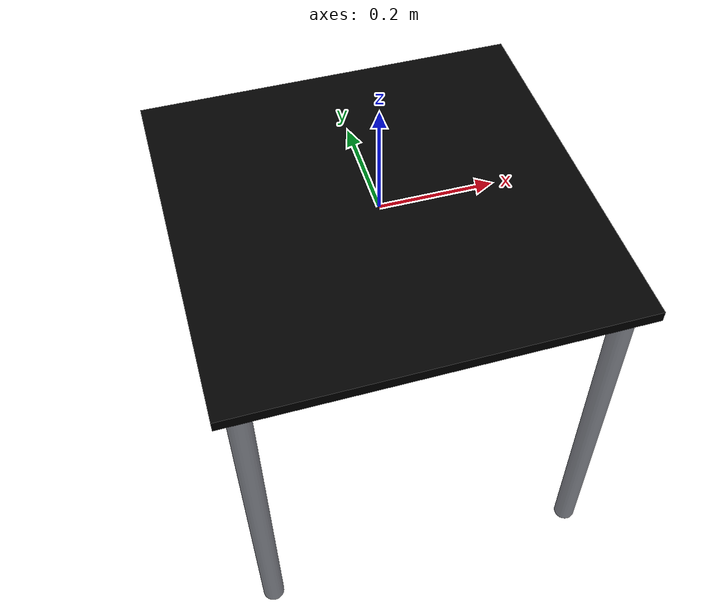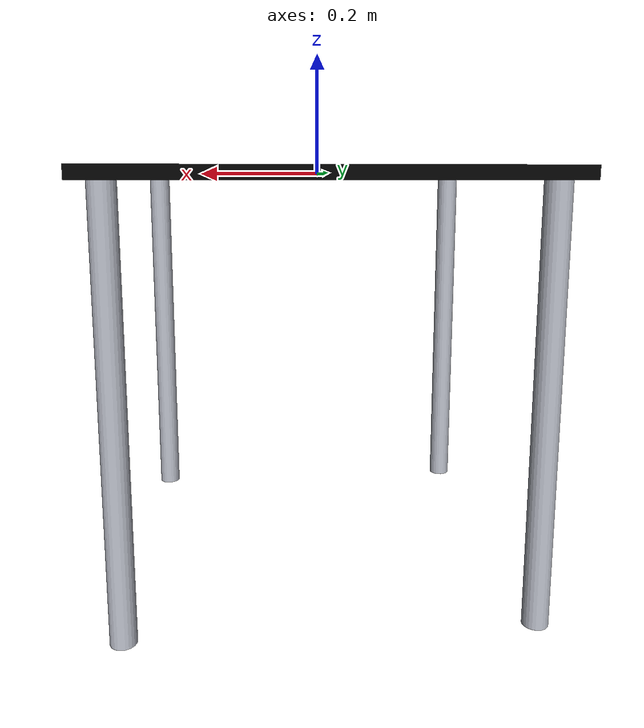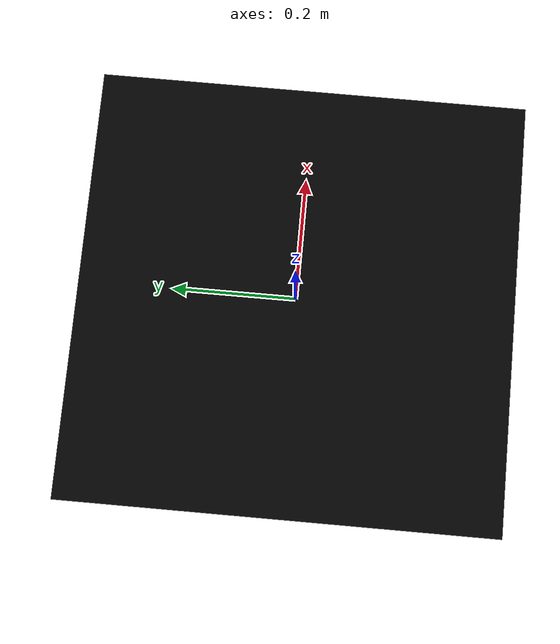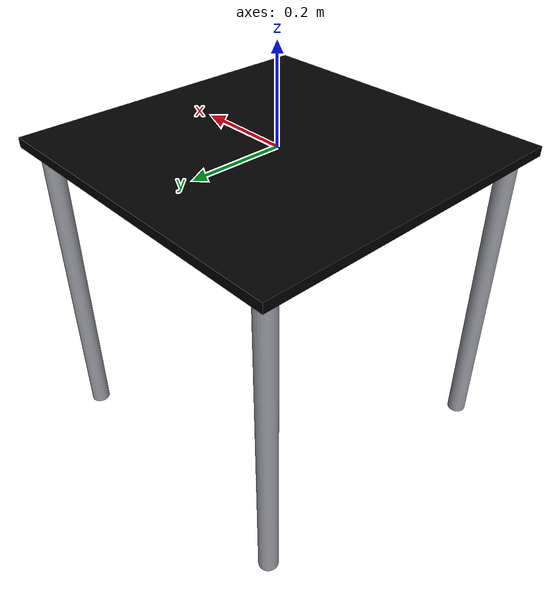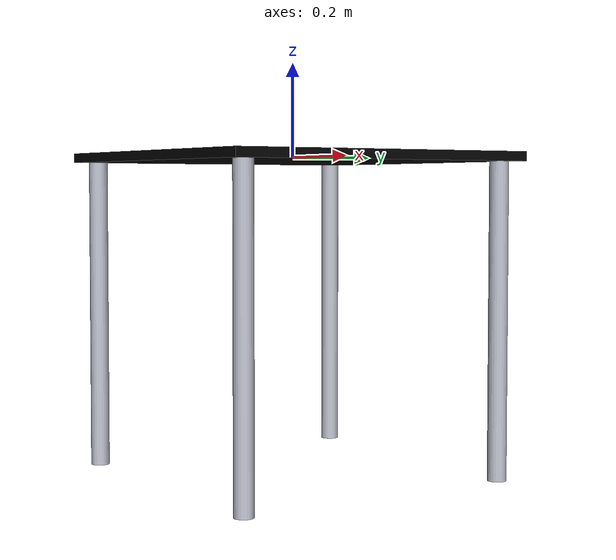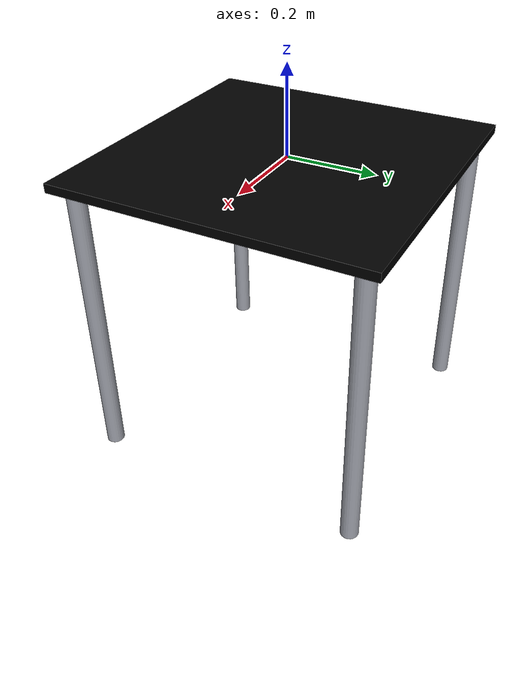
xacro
<?xml version="1.0" ?>

<robot name="table" xmlns:xacro="http://ros.org/wiki/xacro">
    <xacro:include filename="$(find custom_robot_sim)/urdf/inertial_macros.urdf.xacro" />
    <xacro:include filename="$(find custom_robot_sim)/urdf/materials.urdf.xacro" />

    <xacro:macro name="table_leg" params="link_name">
        <link name="${link_name}">
            <visual>
                <origin xyz="0 0 0" rpy="0 0 0"/>
                <geometry>
                    <cylinder length="0.68" radius="0.02" />
                </geometry>
                <material name="silver" />
            </visual>
            <collision>
                <origin xyz="0 0 0" rpy="0 0 0"/>
                <geometry>
                    <cylinder length="0.68" radius="0.02" />
                </geometry>
            </collision>
            <xacro:inertial_cylinder length="0.68" radius="0.02" density="${aluminium_density}">
                <origin xyz="0 0 0" rpy="0 0 0"/>
            </xacro:inertial_cylinder>
        </link>
    </xacro:macro>

    <xacro:property name="tabletop_z_offset" value="${0.68/2}" />
    <xacro:property name="tabletop_x_offset" value="${0.7/2-0.04}" />
    <xacro:property name="tabletop_y_offset" value="${tabletop_x_offset}" />

    <link name="tabletop_link">
        <visual>
            <origin xyz="0 0 0" rpy="0 0 0"/>
            <geometry>
                <box size="0.7 0.7 0.02"/>
            </geometry>
            <material name="black" />
        </visual>
        <collision>
            <origin xyz="0 0 0" rpy="0 0 0"/>
            <geometry>
                <box size="0.7 0.7 0.02"/>
            </geometry>
        </collision>
        <xacro:inertial_box length="0.7" width="0.7" height="0.02" density="${aluminium_density}">
            <origin xyz="0 0 0" rpy="0 0 0"/>
        </xacro:inertial_box>
    </link>

    <joint name="leg_1_joint" type="fixed">
        <parent link="tabletop_link"/>
        <child link="leg_1_link" />
        <origin xyz="${tabletop_x_offset} ${tabletop_y_offset} -${tabletop_z_offset}" rpy="0 0 0"/>
    </joint>

    <xacro:table_leg link_name="leg_1_link"/>

    <joint name="leg_2_joint" type="fixed">
        <parent link="tabletop_link"/>
        <child link="leg_2_link" />
        <origin xyz="-${tabletop_x_offset} ${tabletop_y_offset} -${tabletop_z_offset}" rpy="0 0 0"/>
    </joint>

    <xacro:table_leg link_name="leg_2_link"/>

    <joint name="leg_3_joint" type="fixed">
        <parent link="tabletop_link"/>
        <child link="leg_3_link" />
        <origin xyz="-${tabletop_x_offset} -${tabletop_y_offset} -${tabletop_z_offset}" rpy="0 0 0"/>
    </joint>

    <xacro:table_leg link_name="leg_3_link"/>

    <joint name="leg_4_joint" type="fixed">
        <parent link="tabletop_link"/>
        <child link="leg_4_link" />
        <origin xyz="${tabletop_x_offset} -${tabletop_y_offset} -${tabletop_z_offset}" rpy="0 0 0"/>
    </joint>

    <xacro:table_leg link_name="leg_4_link"/>

</robot>

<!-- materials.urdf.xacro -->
<robot name="xacro_macros" xmlns:xacro="http://ros.org/wiki/xacro">
    <xacro:property name="pla_density" value="600" />
    <xacro:property name="aluminium_density" value="2700" />

    <material name="blue">
        <color rgba="0 0 0.8 0.8"/>
    </material>

    <material name="green">
        <color rgba="0 ${145/255} ${29/255} 0.8"/>
    </material>

    <material name="orange">
        <color rgba="${255/255} ${165/255} 0.0 0.8"/>
    </material>

    <material name="silver">
        <color rgba="${169/255} ${172/255} ${182/255} 1.0"/>
    </material>

    <material name="black">
        <color rgba="${0/255} ${0/255} ${0/255} 1.0"/>
    </material>

</robot>
